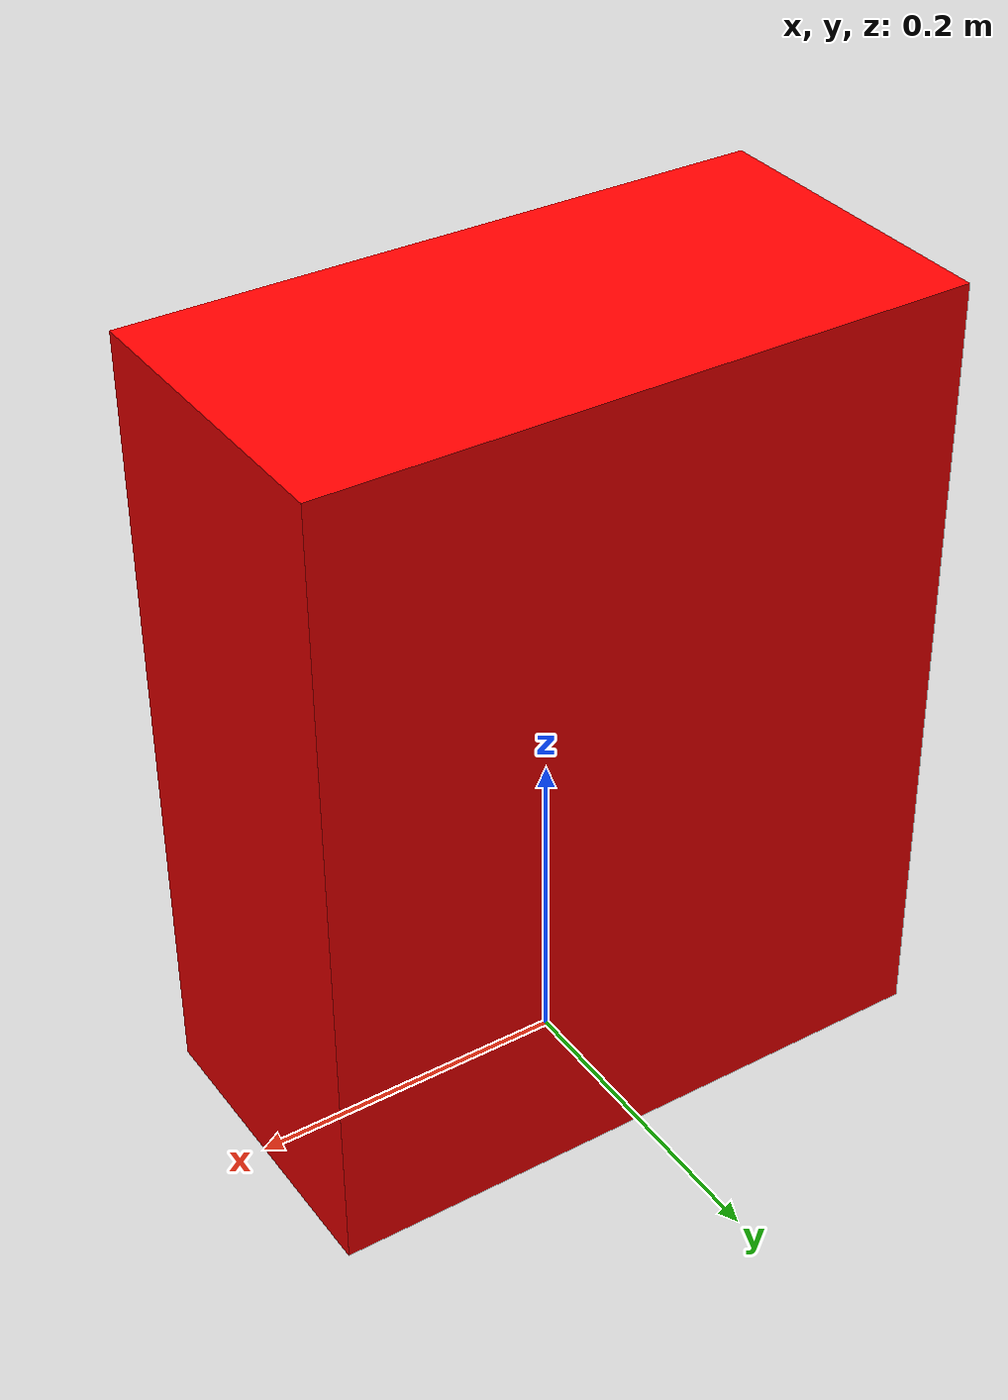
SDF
<?xml version="1.0" ?>
<sdf version="1.6">
  <model name="moving_block">
    <static>false</static>

    <link name="block_link">
      <pose>0 0 0.25 0 0 0</pose>

      <collision name="collision">
        <geometry>
          <box>
            <size>0.4 0.2 0.5</size>
          </box>
        </geometry>
      </collision>

      <visual name="visual">
        <geometry>
          <box>
            <size>0.4 0.2 0.5</size>
          </box>
        </geometry>
        <material>
          <ambient>1 0 0 1</ambient>
          <diffuse>1 0 0 1</diffuse>
        </material>
      </visual>

      <inertial>
        <mass>20.0</mass>
        <inertia>
          <ixx>0.5</ixx>
          <iyy>0.5</iyy>
          <izz>0.5</izz>
        </inertia>
      </inertial>
    </link>

  </model>
</sdf>
